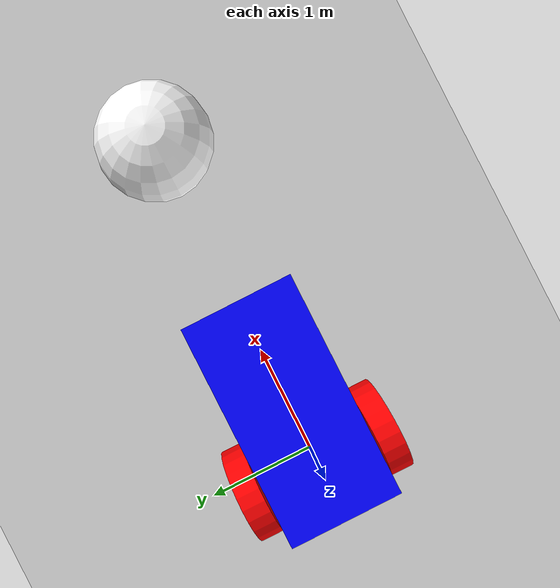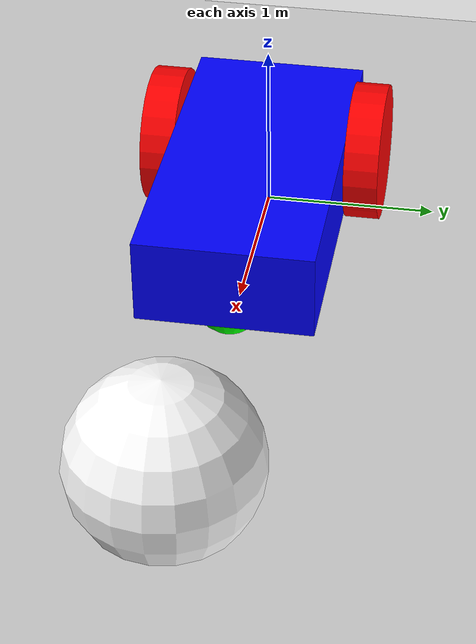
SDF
<?xml version="1.0" ?>
<sdf version="1.9">
    <world name="car_world">
        <physics name="1ms" type="ignored">
            <max_step_size>0.001</max_step_size>
            <real_time_factor>1.0</real_time_factor>
        </physics>
        <plugin
            filename="gz-sim-physics-system"
            name="gz::sim::systems::Physics">
        </plugin>
        <plugin
            filename="gz-sim-user-commands-system"
            name="gz::sim::systems::UserCommands">
        </plugin>
        <plugin
            filename="gz-sim-scene-broadcaster-system"
            name="gz::sim::systems::SceneBroadcaster">
        </plugin>

        <light type="directional" name="sun">
            <cast_shadows>true</cast_shadows>
            <pose>0 0 10 0 0 0</pose>
            <diffuse>0.8 0.8 0.8 1</diffuse>
            <specular>0.2 0.2 0.2 1</specular>
            <attenuation>
                <range>1000</range>
                <constant>0.9</constant>
                <linear>0.01</linear>
                <quadratic>0.001</quadratic>
            </attenuation>
            <direction>-0.5 0.1 -0.9</direction>
        </light>

        <model name="ground_plane">
            <static>true</static>
            <link name="link">
                <collision name="collision">
                <geometry>
                    <plane>
                    <normal>0 0 1</normal>
                    </plane>
                </geometry>
                </collision>
                <visual name="visual">
                <geometry>
                    <plane>
                    <normal>0 0 1</normal>
                    <size>100 100</size>
                    </plane>
                </geometry>
                <material>
                    <ambient>0.8 0.8 0.8 1</ambient>
                    <diffuse>0.8 0.8 0.8 1</diffuse>
                    <specular>0.8 0.8 0.8 1</specular>
                </material>
                </visual>
            </link>
        </model>
	<model name="white_ball">
	    <pose>3 0 0.5 0 0 0</pose>
	    <static>false</static>
	    <link name="link">
	        <collision name="collision">
	            <geometry>
	                <sphere>
	                    <radius>0.5</radius>
	                </sphere>
	            </geometry>
	        </collision>
	        <visual name="visual">
	            <geometry>
	                <sphere>
	                    <radius>0.5</radius>
	                </sphere>
	            </geometry>
	            <material>
	                <ambient>1 1 1 1</ambient>
	                <diffuse>1 1 1 1</diffuse>
	                <specular>1 1 1 1</specular>
	            </material>
	        </visual>
	        <inertial>
	            <mass>1.0</mass>
	            <inertia>
	                <ixx>0.1</ixx>
	                <ixy>0</ixy>
	                <ixz>0</ixz>
	                <iyy>0.1</iyy>
	                <iyz>0</iyz>
	                <izz>0.1</izz>
	            </inertia>
	        </inertial>
	    </link>
	</model>
        <model name='vehicle_blue' canonical_link='chassis'>
            <pose relative_to='world'>0 0 0 0 0 0</pose>

            <link name='chassis'>
                <pose relative_to='__model__'>0.5 0 0.4 0 0 0</pose>
                <inertial>
                    <mass>1.14395</mass>
                    <inertia>
                        <ixx>0.095329</ixx>
                        <ixy>0</ixy>
                        <ixz>0</ixz>
                        <iyy>0.381317</iyy>
                        <iyz>0</iyz>
                        <izz>0.476646</izz>
                    </inertia>
                </inertial>
                <visual name='visual'>
                    <geometry>
                        <box>
                            <size>2.0 1.0 0.5</size>
                        </box>
                    </geometry>
                    <material>
                        <ambient>0.0 0.0 1.0 1</ambient>
                        <diffuse>0.0 0.0 1.0 1</diffuse>
                        <specular>0.0 0.0 1.0 1</specular>
                    </material>
                </visual>
                <collision name='collision'>
                    <geometry>
                        <box>
                            <size>2.0 1.0 0.5</size>
                        </box>
                    </geometry>
                </collision>
		<sensor name="camera" type="camera">

    		    <topic>camera</topic>
    		    <update_rate>30</update_rate>
    		    <camera>
        		<horizontal_fov>1.047</horizontal_fov>
        		<image>
            		    <width>640</width>
            		    <height>480</height>
			   <format>R8G8B8</format>
        		</image>
        		<clip>
            		    <near>0.1</near>
            		    <far>100</far>
        		</clip>
    		    </camera>

<always_on>true</always_on>
		    <update_rate>30</update_rate>
    		    <visualize>true</visualize>
<pose>0.8 0 0.3 0 0 0</pose>
		</sensor>
            </link>

            <link name='left_wheel'>
                <pose relative_to="chassis">-0.5 0.6 0 -1.5707 0 0</pose>
                <inertial>
                    <mass>1</mass>
                    <inertia>
                        <ixx>0.043333</ixx>
                        <ixy>0</ixy>
                        <ixz>0</ixz>
                        <iyy>0.043333</iyy>
                        <iyz>0</iyz>
                        <izz>0.08</izz>
                    </inertia>
                </inertial>
                <visual name='visual'>
                    <geometry>
                        <cylinder>
                            <radius>0.4</radius>
                            <length>0.2</length>
                        </cylinder>
                    </geometry>
                    <material>
                        <ambient>1.0 0.0 0.0 1</ambient>
                        <diffuse>1.0 0.0 0.0 1</diffuse>
                        <specular>1.0 0.0 0.0 1</specular>
                    </material>
                </visual>
                <collision name='collision'>
                    <geometry>
                        <cylinder>
                            <radius>0.4</radius>
                            <length>0.2</length>
                        </cylinder>
                    </geometry>
                </collision>
            </link>

            <link name='right_wheel'>
                <pose relative_to="chassis">-0.5 -0.6 0 -1.5707 0 0</pose>
                <inertial>
                    <mass>1</mass>
                    <inertia>
                        <ixx>0.043333</ixx>
                        <ixy>0</ixy>
                        <ixz>0</ixz>
                        <iyy>0.043333</iyy>
                        <iyz>0</iyz>
                        <izz>0.08</izz>
                    </inertia>
                </inertial>
                <visual name='visual'>
                    <geometry>
                        <cylinder>
                            <radius>0.4</radius>
                            <length>0.2</length>
                        </cylinder>
                    </geometry>
                    <material>
                        <ambient>1.0 0.0 0.0 1</ambient>
                        <diffuse>1.0 0.0 0.0 1</diffuse>
                        <specular>1.0 0.0 0.0 1</specular>
                    </material>
                </visual>
                <collision name='collision'>
                    <geometry>
                        <cylinder>
                            <radius>0.4</radius>
                            <length>0.2</length>
                        </cylinder>
                    </geometry>
                </collision>
            </link>

            <frame name="caster_frame" attached_to='chassis'>
                <pose>0.8 0 -0.2 0 0 0</pose>
            </frame>

            <link name='caster'>
                <pose relative_to='caster_frame'/>
                <inertial>
                    <mass>1</mass>
                    <inertia>
                        <ixx>0.016</ixx>
                        <ixy>0</ixy>
                        <ixz>0</ixz>
                        <iyy>0.016</iyy>
                        <iyz>0</iyz>
                        <izz>0.016</izz>
                    </inertia>
                </inertial>
                <visual name='visual'>
                    <geometry>
                        <sphere>
                            <radius>0.2</radius>
                        </sphere>
                    </geometry>
                    <material>
                        <ambient>0.0 1 0.0 1</ambient>
                        <diffuse>0.0 1 0.0 1</diffuse>
                        <specular>0.0 1 0.0 1</specular>
                    </material>
                </visual>
                <collision name='collision'>
                    <geometry>
                        <sphere>
                            <radius>0.2</radius>
                        </sphere>
                    </geometry>
                </collision>
            </link>

            <joint name='left_wheel_joint' type='revolute'>
                <pose relative_to='left_wheel'/>
                <parent>chassis</parent>
                <child>left_wheel</child>
                <axis>
                    <xyz expressed_in='__model__'>0 1 0</xyz>
                    <limit>
                        <lower>-1.79769e+308</lower>
                        <upper>1.79769e+308</upper>
                    </limit>
                </axis>
            </joint>

            <joint name='right_wheel_joint' type='revolute'>
                <pose relative_to='right_wheel'/>
                <parent>chassis</parent>
                <child>right_wheel</child>
                <axis>
                    <xyz expressed_in='__model__'>0 1 0</xyz>
                    <limit>
                        <lower>-1.79769e+308</lower>
                        <upper>1.79769e+308</upper>
                    </limit>
                </axis>
            </joint>

            <joint name='caster_wheel' type='ball'>
                <parent>chassis</parent>
                <child>caster</child>
            </joint>
	    <plugin
    		filename="gz-sim-diff-drive-system"
    		name="gz::sim::systems::DiffDrive">
    		<left_joint>left_wheel_joint</left_joint>
    		<right_joint>right_wheel_joint</right_joint>
   		<wheel_separation>1.2</wheel_separation>
    		<wheel_radius>0.4</wheel_radius>
    		<odom_publish_frequency>1</odom_publish_frequency>
    		<topic>cmd_vel</topic>
	    </plugin>
    	    <plugin
      		filename="gz-sim-sensors-system"
      		name="gz::sim::systems::Sensors">
      		<render_engine>ogre2</render_engine>
    	    </plugin>
        </model>
    </world>
</sdf>
